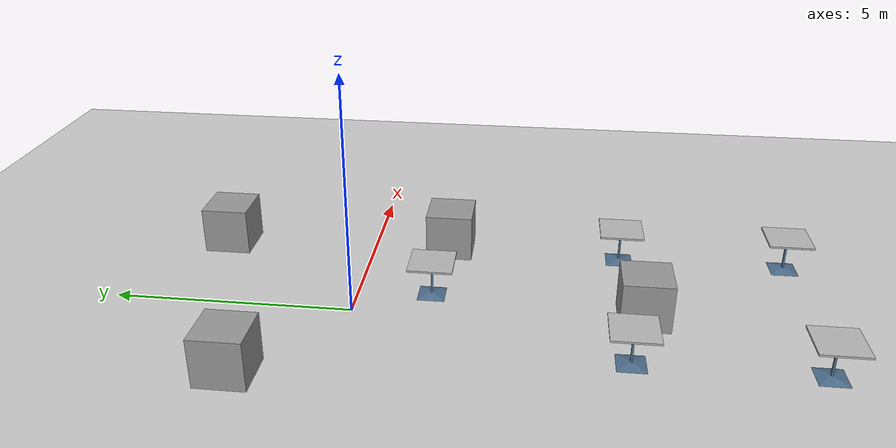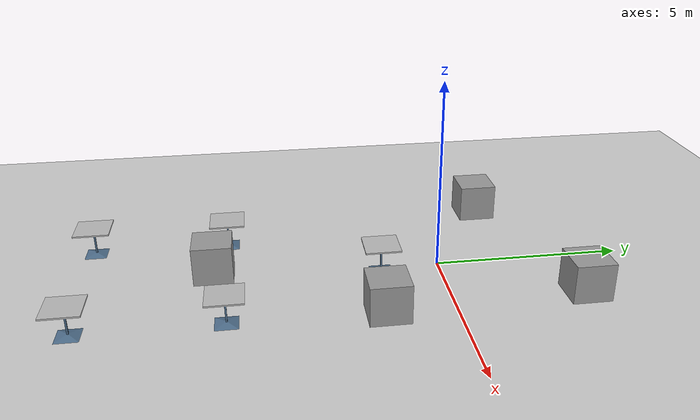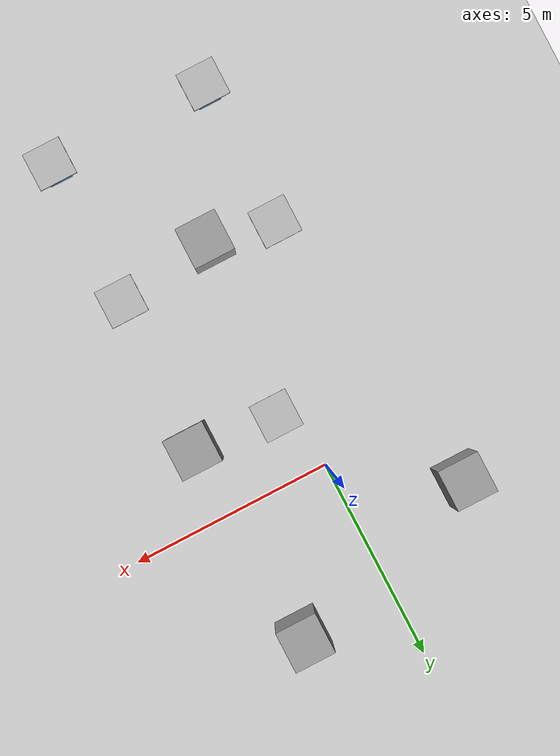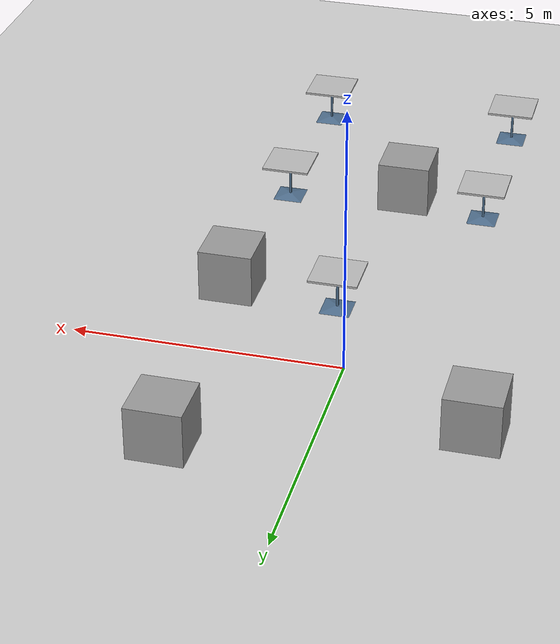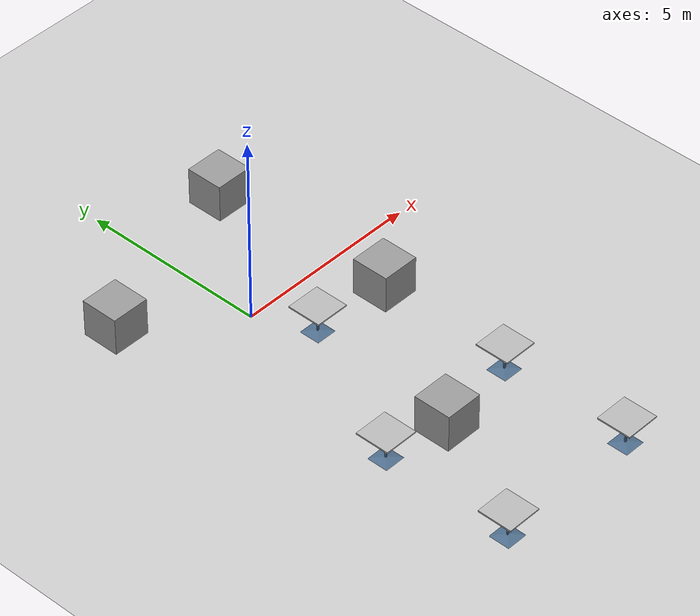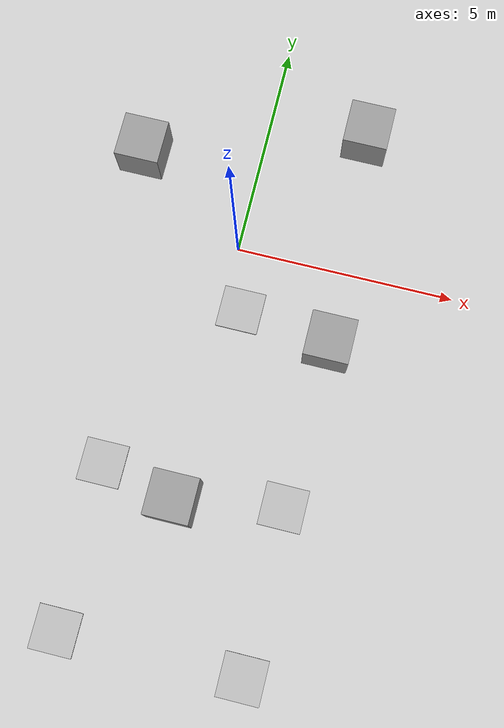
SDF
<sdf version="1.7">
 <world name="default">
  <light name="sun" type="directional">
   <pose>0 0 10 0 -0 0</pose>
   <diffuse>0.8 0.8 0.8 1</diffuse>
   <specular>0.2 0.2 0.2 1</specular>
   <attenuation>
    <range>1000</range>
    <constant>0.9</constant>
    <linear>0.01</linear>
    <quadratic>0.001</quadratic>
   </attenuation>
   <direction>0 0.5 -0.9</direction>
   <spot><inner_angle>0</inner_angle><outer_angle>0</outer_angle><falloff>0</falloff></spot>
  </light>
  <light name="point_light" type="point">
   <pose>0 -0.377195 6.59868 0 -0 0</pose>
   <diffuse>0.784314 0.784314 0.784314 1</diffuse>
   <specular>0.0980392 0.0980392 0.0980392 1</specular>
   <attenuation>
    <range>50</range>
    <constant>0.8</constant>
    <linear>0</linear>
    <quadratic>0.001</quadratic>
   </attenuation>
   <cast_shadows>0</cast_shadows>
   <direction>0 0 -1</direction>
   <spot><inner_angle>0</inner_angle><outer_angle>0</outer_angle><falloff>0</falloff></spot>
  </light>
  <model name="ground_plane">
   <static>1</static>
   <link name="link">
    <collision name="collision">
     <geometry><plane><normal>0 0 1</normal><size>100 100</size></plane></geometry>
     <surface>
      <contact><collide_bitmask>65535</collide_bitmask></contact>
      <friction><ode><mu>100</mu><mu2>50</mu2></ode></friction>
     </surface>
    </collision>
    <visual name="visual">
     <cast_shadows>0</cast_shadows>
     <geometry><plane><normal>0 0 1</normal><size>100 100</size></plane></geometry>
     <material>
      <script><uri>file://media/materials/scripts/gazebo.material</uri><name>Gazebo/Grey</name></script>
     </material>
    </visual>
   </link>
  </model>
  <model name="table1">
   <static>1</static>
   <link name="link">
    <collision name="surface">
     <pose>0 0 0.755 0 -0 0</pose>
     <geometry><box><size>0.913 0.913 0.04</size></box></geometry>
    </collision>
    <collision name="column">
     <pose>0 0 0.37 0 -0 0</pose>
     <geometry><box><size>0.042 0.042 0.74</size></box></geometry>
    </collision>
    <collision name="base">
     <pose>0 0 0.02 0 -0 0</pose>
     <geometry><box><size>0.56 0.56 0.04</size></box></geometry>
    </collision>
    <visual name="visual">
     <geometry><mesh><uri>model://cafe_table/meshes/cafe_table.dae</uri></mesh></geometry>
    </visual>
   </link>
   <pose>0.5 -1.6 0.2 0 -0 0</pose>
  </model>
  <model name="table2">
   <static>1</static>
   <link name="link">
    <collision name="surface">
     <pose>0 0 0.755 0 -0 0</pose>
     <geometry><box><size>0.913 0.913 0.04</size></box></geometry>
    </collision>
    <collision name="column">
     <pose>0 0 0.37 0 -0 0</pose>
     <geometry><box><size>0.042 0.042 0.74</size></box></geometry>
    </collision>
    <collision name="base">
     <pose>0 0 0.02 0 -0 0</pose>
     <geometry><box><size>0.56 0.56 0.04</size></box></geometry>
    </collision>
    <visual name="visual">
     <geometry><mesh><uri>model://cafe_table/meshes/cafe_table.dae</uri></mesh></geometry>
    </visual>
   </link>
   <pose>2.4 -5.5 0.2 0 -0 0</pose>
  </model>
  <model name="table3">
   <static>1</static>
   <link name="link">
    <collision name="surface">
     <pose>0 0 0.755 0 -0 0</pose>
     <geometry><box><size>0.913 0.913 0.04</size></box></geometry>
    </collision>
    <collision name="column">
     <pose>0 0 0.37 0 -0 0</pose>
     <geometry><box><size>0.042 0.042 0.74</size></box></geometry>
    </collision>
    <collision name="base">
     <pose>0 0 0.02 0 -0 0</pose>
     <geometry><box><size>0.56 0.56 0.04</size></box></geometry>
    </collision>
    <visual name="visual">
     <geometry><mesh><uri>model://cafe_table/meshes/cafe_table.dae</uri></mesh></geometry>
    </visual>
   </link>
   <pose>-1.5 -5.5 0.2 0 -0 0</pose>
  </model>
  <model name="table4">
   <static>1</static>
   <link name="link">
    <collision name="surface">
     <pose>0 0 0.755 0 -0 0</pose>
     <geometry><box><size>0.913 0.913 0.04</size></box></geometry>
    </collision>
    <collision name="column">
     <pose>0 0 0.37 0 -0 0</pose>
     <geometry><box><size>0.042 0.042 0.74</size></box></geometry>
    </collision>
    <collision name="base">
     <pose>0 0 0.02 0 -0 0</pose>
     <geometry><box><size>0.56 0.56 0.04</size></box></geometry>
    </collision>
    <visual name="visual">
     <geometry><mesh><uri>model://cafe_table/meshes/cafe_table.dae</uri></mesh></geometry>
    </visual>
   </link>
   <pose>2.4 -9 0.2 0 -0 0</pose>
  </model>
  <model name="table5">
   <static>1</static>
   <link name="link">
    <collision name="surface">
     <pose>0 0 0.755 0 -0 0</pose>
     <geometry><box><size>0.913 0.913 0.04</size></box></geometry>
    </collision>
    <collision name="column">
     <pose>0 0 0.37 0 -0 0</pose>
     <geometry><box><size>0.042 0.042 0.74</size></box></geometry>
    </collision>
    <collision name="base">
     <pose>0 0 0.02 0 -0 0</pose>
     <geometry><box><size>0.56 0.56 0.04</size></box></geometry>
    </collision>
    <visual name="visual">
     <geometry><mesh><uri>model://cafe_table/meshes/cafe_table.dae</uri></mesh></geometry>
    </visual>
   </link>
   <pose>-1.5 -9 0.2 0 -0 0</pose>
  </model>
  <gravity>0 0 -9.8</gravity>
  <magnetic_field>6e-06 2.3e-05 -4.2e-05</magnetic_field>
  <atmosphere type="adiabatic"/>
  <physics type="ode">
   <max_step_size>0.001</max_step_size>
   <real_time_factor>1</real_time_factor>
   <real_time_update_rate>1000</real_time_update_rate>
  </physics>
  <scene><ambient>0.4 0.4 0.4 1</ambient><background>0.7 0.7 0.7 1</background><shadows>1</shadows></scene>
  <audio><device>default</device></audio>
  <spherical_coordinates>
   <surface_model>EARTH_WGS84</surface_model>
   <latitude_deg>0</latitude_deg>
   <longitude_deg>0</longitude_deg>
   <elevation>0</elevation>
   <heading_deg>0</heading_deg>
  </spherical_coordinates>
  <model name="unit_box">
   <pose>-2.61464 1.67591 0.6898 -0 -0 -0</pose>
   <link name="link">
    <inertial>
     <mass>1</mass>
     <inertia>
      <ixx>0.166667</ixx>
      <ixy>0</ixy>
      <ixz>0</ixz>
      <iyy>0.166667</iyy>
      <iyz>0</iyz>
      <izz>0.166667</izz>
     </inertia>
    </inertial>
    <collision name="collision"><geometry><box><size>1 1 1</size></box></geometry></collision>
    <visual name="visual">
     <geometry><box><size>1 1 1</size></box></geometry>
     <material>
      <script><name>Gazebo/Grey</name><uri>file://media/materials/scripts/gazebo.material</uri></script>
     </material>
    </visual>
   </link>
  </model>
  <model name="unit_box_0">
   <pose>2.2696 3.19884 0.6898 -0 -0 -0</pose>
   <link name="link">
    <inertial>
     <mass>1</mass>
     <inertia>
      <ixx>0.166667</ixx>
      <ixy>0</ixy>
      <ixz>0</ixz>
      <iyy>0.166667</iyy>
      <iyz>0</iyz>
      <izz>0.166667</izz>
     </inertia>
    </inertial>
    <collision name="collision"><geometry><box><size>1 1 1</size></box></geometry></collision>
    <visual name="visual">
     <geometry><box><size>1 1 1</size></box></geometry>
     <material>
      <script><name>Gazebo/Grey</name><uri>file://media/materials/scripts/gazebo.material</uri></script>
     </material>
    </visual>
   </link>
  </model>
  <model name="unit_box_1">
   <pose>2.5276 -1.76993 0.6898 -0 -0 -0</pose>
   <link name="link">
    <inertial>
     <mass>1</mass>
     <inertia>
      <ixx>0.166667</ixx>
      <ixy>0</ixy>
      <ixz>0</ixz>
      <iyy>0.166667</iyy>
      <iyz>0</iyz>
      <izz>0.166667</izz>
     </inertia>
    </inertial>
    <collision name="collision"><geometry><box><size>1 1 1</size></box></geometry></collision>
    <visual name="visual">
     <geometry><box><size>1 1 1</size></box></geometry>
     <material>
      <script><name>Gazebo/Grey</name><uri>file://media/materials/scripts/gazebo.material</uri></script>
     </material>
    </visual>
   </link>
  </model>
  <model name="unit_box_2">
   <pose>0.087179 -5.84652 0.6898 -0 -0 -0</pose>
   <link name="link">
    <inertial>
     <mass>1</mass>
     <inertia>
      <ixx>0.166667</ixx>
      <ixy>0</ixy>
      <ixz>0</ixz>
      <iyy>0.166667</iyy>
      <iyz>0</iyz>
      <izz>0.166667</izz>
     </inertia>
    </inertial>
    <collision name="collision"><geometry><box><size>1 1 1</size></box></geometry></collision>
    <visual name="visual">
     <geometry><box><size>1 1 1</size></box></geometry>
     <material>
      <script><name>Gazebo/Grey</name><uri>file://media/materials/scripts/gazebo.material</uri></script>
     </material>
    </visual>
   </link>
  </model>
 </world>
</sdf>
